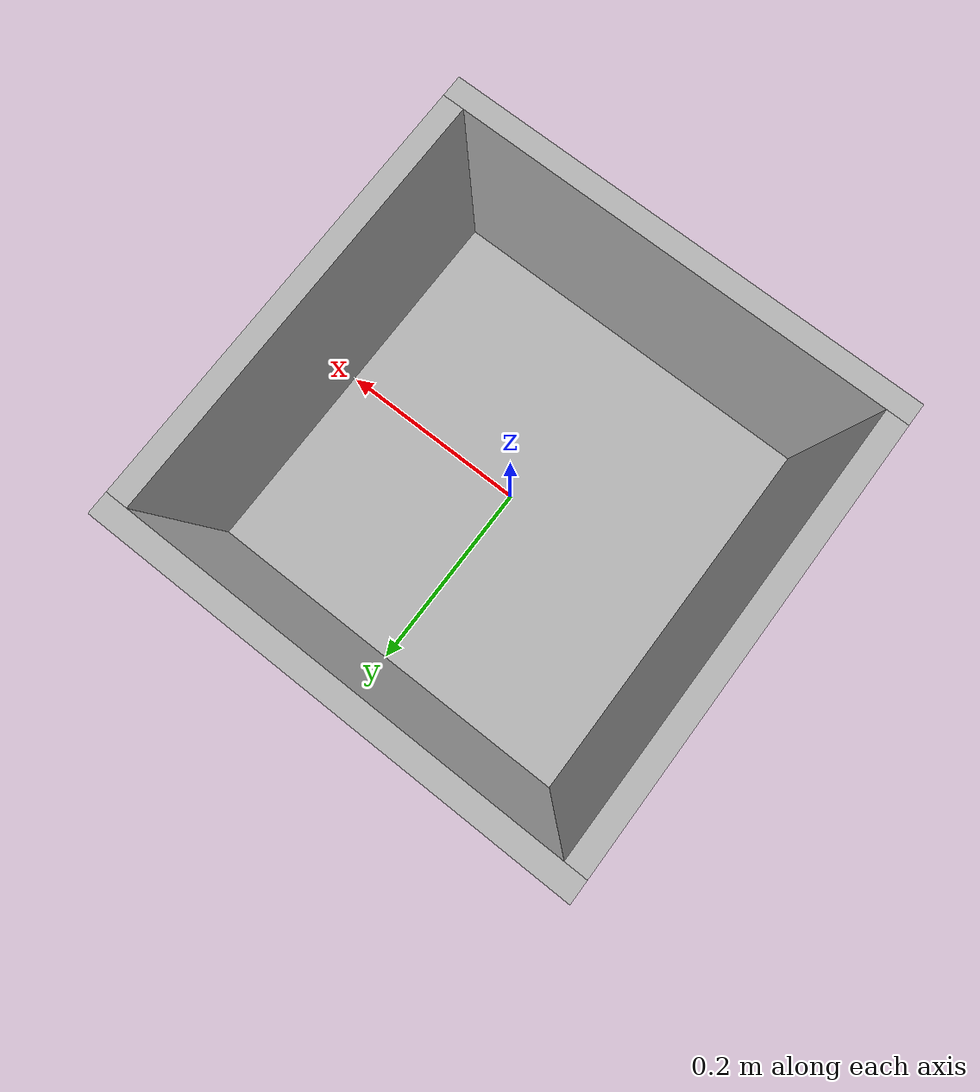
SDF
<?xml version="1.0" ?>
<sdf version="1.6">
  <model name="bin_tray">
    <static>true</static>

    <!-- Bin bottom -->
    <link name="bottom">
      <pose>0 0 0 0 0 0</pose>
      <visual name="bottom_visual">
        <geometry>
          <box>
            <size>0.4 0.4 0.02</size>
          </box>
        </geometry>
        <material>
          <ambient>0.7 0.7 0.7 1</ambient>
          <diffuse>0.7 0.7 0.7 1</diffuse>
        </material>
      </visual>
      <collision name="bottom_collision">
        <geometry>
          <box>
            <size>0.4 0.4 0.02</size>
          </box>
        </geometry>
        <surface>
          <friction>
            <ode>
              <mu>0.5</mu>
              <mu2>0.5</mu2>
            </ode>
          </friction>
          <bounce>
            <restitution_coefficient>0.1</restitution_coefficient>
          </bounce>
        </surface>
      </collision>
    </link>

    <!-- Bin sides -->
    <link name="side_1">
      <pose>0.21 0 0.11 0 0 0</pose>
      <visual name="side_1_visual">
        <geometry>
          <box>
            <size>0.02 0.4 0.22</size>
          </box>
        </geometry>
        <material>
          <ambient>0.7 0.7 0.7 1</ambient>
          <diffuse>0.7 0.7 0.7 1</diffuse>
        </material>
      </visual>
      <collision name="side_1_collision">
        <geometry>
          <box>
            <size>0.02 0.4 0.22</size>
          </box>
        </geometry>
        <surface>
          <friction>
            <ode>
              <mu>0.5</mu>
              <mu2>0.5</mu2>
            </ode>
          </friction>
          <bounce>
            <restitution_coefficient>0.1</restitution_coefficient>
          </bounce>
        </surface>
      </collision>
    </link>

    <link name="side_2">
      <pose>-0.21 0 0.11 0 0 0</pose>
      <visual name="side_2_visual">
        <geometry>
          <box>
            <size>0.02 0.4 0.22</size>
          </box>
        </geometry>
        <material>
          <ambient>0.7 0.7 0.7 1</ambient>
          <diffuse>0.7 0.7 0.7 1</diffuse>
        </material>
      </visual>
      <collision name="side_2_collision">
        <geometry>
          <box>
            <size>0.02 0.4 0.22</size>
          </box>
        </geometry>
        <surface>
          <friction>
            <ode>
              <mu>0.5</mu>
              <mu2>0.5</mu2>
            </ode>
          </friction>
          <bounce>
            <restitution_coefficient>0.1</restitution_coefficient>
          </bounce>
        </surface>
      </collision>
    </link>

    <link name="side_3">
      <pose>0 0.21 0.11 0 0 0</pose>
      <visual name="side_3_visual">
        <geometry>
          <box>
            <size>0.44 0.02 0.22</size>
          </box>
        </geometry>
        <material>
          <ambient>0.7 0.7 0.7 1</ambient>
          <diffuse>0.7 0.7 0.7 1</diffuse>
        </material>
      </visual>
      <collision name="side_3_collision">
        <geometry>
          <box>
            <size>0.44 0.02 0.22</size>
          </box>
        </geometry>
        <surface>
          <friction>
            <ode>
              <mu>0.5</mu>
              <mu2>0.5</mu2>
            </ode>
          </friction>
          <bounce>
            <restitution_coefficient>0.1</restitution_coefficient>
          </bounce>
        </surface>
      </collision>
    </link>

    <link name="side_4">
      <pose>0 -0.21 0.11 0 0 0</pose>
      <visual name="side_4_visual">
        <geometry>
          <box>
            <size>0.44 0.02 0.22</size>
          </box>
        </geometry>
        <material>
          <ambient>0.7 0.7 0.7 1</ambient>
          <diffuse>0.7 0.7 0.7 1</diffuse>
        </material>
      </visual>
      <collision name="side_4_collision">
        <geometry>
          <box>
            <size>0.44 0.02 0.22</size>
          </box>
        </geometry>
        <surface>
          <friction>
            <ode>
              <mu>0.5</mu>
              <mu2>0.5</mu2>
            </ode>
          </friction>
          <bounce>
            <restitution_coefficient>0.1</restitution_coefficient>
          </bounce>
        </surface>
      </collision>
    </link>
  </model>
</sdf>
